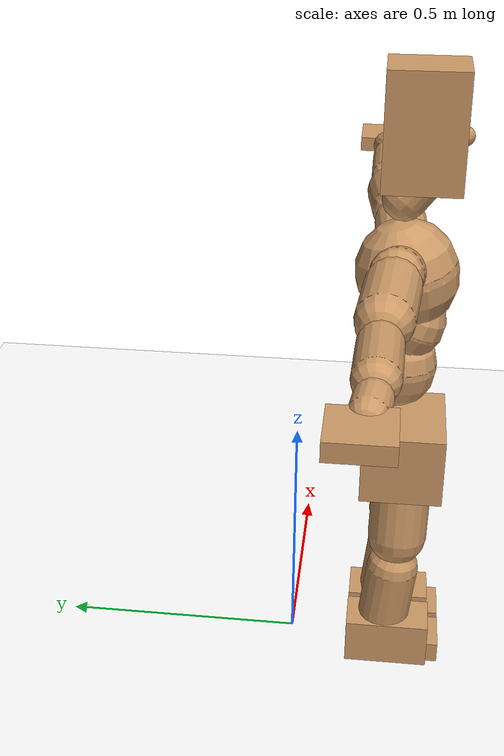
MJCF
<mujoco model="humanoid">
  <option integrator="implicitfast" />

  <visual>
    <global offwidth="1280" offheight="960" />
    <headlight active="1" ambient="0.34 0.34 0.34" diffuse="0.5 0.5 0.5" />
  </visual>

  <default>
    <joint damping="2" stiffness="2" armature="0.01" limited="true" solimplimit="0 .99 .01" />
    <geom condim="1" friction="0.7 0.005 0.0001" solimp=".99 .99 .003" solref="0.015 1" margin="0.001" rgba="0.8 0.6 .4 1" />
    <default class="smplcontact">
      <geom condim="3" friction="1. 0.005 0.0001" solref="0.015 1" solimp="0.98 0.98 0.001" priority="1" />
    </default>
    <default class="stiff_medium">
      <joint stiffness="10" />
    </default>
    <default class="stiff_medium_higher">
      <joint stiffness="50" />
    </default>
    <default class="stiff_high">
      <joint stiffness="100" />
    </default>
  </default>

  <asset>
    <texture type="skybox" builtin="gradient" rgb1="0.99 0.99 0.99" rgb2="0.608 0.828 0.892" width="100" />
    <texture builtin="flat" height="1278" mark="cross" markrgb="1 1 1" name="texgeom" random="0.01" rgb1="0.8 0.6 0.4" rgb2="0.8 0.6 0.4" type="cube" width="127" />
    <texture name="texplane" type="2d" builtin="checker" markrgb="1 1 1" rgb1="0.756 0.772 0.76" rgb2="0.6 0.6 0.6" width="100" height="100" />
    <material name="MatPlane" reflectance="0.5" texture="texplane" texrepeat="1 1" texuniform="true" />
    <material name="geom" texture="texgeom" texuniform="true" />
  </asset>

  <worldbody>
    <light name="tracking_light" pos="0 0 7" dir="0 0 -1" directional="true" cutoff="100" exponent="1" diffuse="1 1 1" specular="0.1 0.1 0.1" mode="trackcom" />
    <camera name="back" pos="0 3 2.4" xyaxes="-1 0 0 0 -1 2" mode="trackcom" />
    <camera name="side" pos="-3 0 2.4" xyaxes="0 -1 0 1 0 2" mode="trackcom" />
    <camera name="front_side" pos="-2.8 -2.8 0.8" xyaxes="0.5 -0.5 0 0.1 0.1 1" mode="trackcom" />
    <geom condim="3" name="floor" pos="0 0 0" rgba="1 1 1 1" size="100 100 .2" type="plane" material="MatPlane" />
    <body name="Pelvis" pos="-0.0018 -0.2233 0.49225" euler="90 0 0">
      <site name="Pelvis" size="0.01" />
      <freejoint name="Pelvis" />
      <geom type="box" pos="-0.0000 -0.0121 -0.0055" size="0.1069 0.0722 0.083" quat="1.0000 0.0000 0.0000 0.0000" density="3165.830099" name="Pelvis" />
      <body name="L_Hip" pos="0.03475 -0.0457 -0.0034">
        <joint name="L_Hip_x" type="hinge" pos="0 0 0" axis="1 0 0" stiffness="3.3281267346938783" range="-160.0 22.92" class="stiff_medium" damping="3.7390012674465325" armature="0.0018669335091027717"/>
        <joint name="L_Hip_y" type="hinge" pos="0 0 0" axis="0 1 0" stiffness="3.37791" range="-70.0 70.0" class="stiff_medium" damping="4.005630916019097" armature="0.004750001934737157"/>
        <joint name="L_Hip_z" type="hinge" pos="0 0 0" axis="0 0 1" stiffness="3.3736477551020405" range="-28.65 90.0" class="stiff_medium" damping="2.5063841398267135" armature="0.0018620679787552058"/>
        <geom type="capsule" density="2040.816327" fromto="0.00345 -0.0375 -0.00045 0.0137 -0.1501 -0.0018" size="0.0615" name="L_Hip" />
        <body name="L_Knee" pos="0.01715 -0.1876 -0.00225">
          <joint name="L_Knee_x" type="hinge" pos="0 0 0" axis="1 0 0" range="-5.16 171.89" damping="2.234113816312467" armature="0.002158215061835119" stiffness="0.7227130408163265"/>
          <joint name="L_Knee_y" type="hinge" pos="0 0 0" axis="0 1 0" range="-4.58 6.88" damping="3.4591258985845017" armature="0.00542202401615855" stiffness="0.6896382205818496"/>
          <joint name="L_Knee_z" type="hinge" pos="0 0 0" axis="0 0 1" range="-6.88 4.58" damping="2.248338952702009" armature="0.0021311895651193284" stiffness="0.7412274770408163"/>
          <geom type="capsule" density="1234.567901" fromto="-0.00135 -0.0398 -0.00435 -0.00545 -0.1592 -0.0175" size="0.0541" name="L_Knee" />
          <body name="L_Ankle" pos="-0.0068 -0.199 -0.02185">
            <joint name="L_Ankle_x" type="hinge" pos="0 0 0" axis="1 0 0" range="-45.84 45.84" class="stiff_medium" damping="3.0200432285450787" armature="0.005067033945711657" stiffness="5.0"/>
            <joint name="L_Ankle_y" type="hinge" pos="0 0 0" axis="0 1 0" range="-74.48 22.92" class="stiff_medium" damping="1.5371232923821347" armature="0.005250551146630429" stiffness="5.0"/>
            <joint name="L_Ankle_z" type="hinge" pos="0 0 0" axis="0 0 1" range="-4.58 4.58" class="stiff_medium" damping="3.4078637028281036" armature="0.006451963898362929" stiffness="5.0"/>
            <geom type="box" pos="0.01165 -0.01195 0.0121" size="0.0483 0.0464 0.085" quat="1.0000 0.0000 0.0000 0.0000" density="449.071558" name="L_Ankle" class="smplcontact" />
            <body name="L_Toe" pos="0.0132 -0.0279 0.05965">
              <joint name="L_Toe_x" type="hinge" pos="0 0 0" axis="1 0 0" range="-91.67 22.92" armature="0.007148590664291726" damping="1.1957082139294457" stiffness="1.0"/>
              <joint name="L_Toe_y" type="hinge" pos="0 0 0" axis="0 1 0" range="-4.58 4.58" armature="0.007990951927082678" damping="1.2641955487251706" stiffness="1.0"/>
              <joint name="L_Toe_z" type="hinge" pos="0 0 0" axis="0 0 1" range="-4.58 4.58" armature="0.009694161060559826" damping="1.3924195531921997" stiffness="1.0"/>
              <geom type="box" pos="-0.0015 0.00275 0.0124" size="0.0478 0.02 0.0496" quat="1.0000 0.0000 0.0000 0.0000" density="423.206892" name="L_Toe" class="smplcontact" />
            </body>
          </body>
        </body>
      </body>
      <body name="R_Hip" pos="-0.03385 -0.04525 -0.00215">
        <joint name="R_Hip_x" type="hinge" pos="0 0 0" axis="1 0 0" stiffness="3.3281267346938783" range="-160.0 22.92" class="stiff_medium" damping="3.7390012674465325" armature="0.0018669335091027717"/>
        <joint name="R_Hip_y" type="hinge" pos="0 0 0" axis="0 1 0" stiffness="3.37791" range="-70.0 70.0" class="stiff_medium" damping="4.005630916019097" armature="0.004750001934737157"/>
        <joint name="R_Hip_z" type="hinge" pos="0 0 0" axis="0 0 1" stiffness="3.3736477551020405" range="-90.0 28.65" class="stiff_medium" damping="2.5063841398267135" armature="0.0018620679787552058"/>
        <geom type="capsule" density="2040.816327" fromto="-0.00385 -0.03825 -0.0009 -0.0153 -0.15305 -0.00355" size="0.0606" name="R_Hip" />
        <body name="R_Knee" pos="-0.01915 -0.1913 -0.00445">
          <joint name="R_Knee_x" type="hinge" pos="0 0 0" axis="1 0 0" range="-5.16 171.89" damping="2.234113816312467" armature="0.002158215061835119" stiffness="0.7227130408163265"/>
          <joint name="R_Knee_y" type="hinge" pos="0 0 0" axis="0 1 0" range="-6.88 4.58" damping="3.4591258985845017" armature="0.00542202401615855" stiffness="0.6896382205818496"/>
          <joint name="R_Knee_z" type="hinge" pos="0 0 0" axis="0 0 1" range="-4.58 6.88" damping="2.248338952702009" armature="0.0021311895651193284" stiffness="0.7412274770408163"/>
          <geom type="capsule" density="1234.567901" fromto="0.0016 -0.03985 -0.00425 0.0063 -0.15935 -0.0169" size="0.0541" name="R_Knee" />
          <body name="R_Ankle" pos="0.0079 -0.1992 -0.02115">
            <joint name="R_Ankle_x" type="hinge" pos="0 0 0" axis="1 0 0" range="-45.84 45.84" class="stiff_medium" damping="3.0200432285450787" armature="0.005067033945711657" stiffness="5.0"/>
            <joint name="R_Ankle_y" type="hinge" pos="0 0 0" axis="0 1 0" range="-22.92 74.48" class="stiff_medium" damping="1.5371232923821347" armature="0.005250551146630429" stiffness="5.0"/>
            <joint name="R_Ankle_z" type="hinge" pos="0 0 0" axis="0 0 1" range="-4.58 4.58" class="stiff_medium" damping="3.4078637028281036" armature="0.006451963898362929" stiffness="5.0"/>
            <geom type="box" pos="-0.0106 -0.0087 0.0128" size="0.0483 0.0478 0.0865" quat="1.0000 0.0000 0.0000 0.0000" density="434.700981" name="R_Ankle" class="smplcontact" />
            <body name="R_Toe" pos="-0.0127 -0.02405 0.06165">
              <joint name="R_Toe_x" type="hinge" pos="0 0 0" axis="1 0 0" range="-91.67 22.92" armature="0.007148590664291726" damping="1.1957082139294457" stiffness="1.0"/>
              <joint name="R_Toe_y" type="hinge" pos="0 0 0" axis="0 1 0" range="-4.58 4.58" armature="0.007990951927082678" damping="1.2641955487251706" stiffness="1.0"/>
              <joint name="R_Toe_z" type="hinge" pos="0 0 0" axis="0 0 1" range="-4.58 4.58" armature="0.009694161060559826" damping="1.3924195531921997" stiffness="1.0"/>
              <geom type="box" pos="0.0021 0.00225 0.01135" size="0.0479 0.0216 0.0493" quat="1.0000 0.0000 0.0000 0.0000" density="407.384095" name="R_Toe" class="smplcontact" />
            </body>
          </body>
        </body>
      </body>
      <body name="Torso" pos="-0.0025 0.109 -0.0267">
        <joint name="Torso_x" type="hinge" pos="0 0 0" axis="1 0 0" range="-25.78 57.3" class="stiff_medium" damping="14.377725126950711" armature="0.009518929822817207" stiffness="9.651831020408164"/>
        <joint name="Torso_y" type="hinge" pos="0 0 0" axis="0 1 0" range="-57.3 57.3" class="stiff_high" damping="17.047281200761134" armature="0.007489541703378378" stiffness="97.00519999999999"/>
        <joint name="Torso_z" type="hinge" pos="0 0 0" axis="0 0 1" range="-34.38 34.38" class="stiff_high" damping="18.56536513512957" armature="0.008825226346331877" stiffness="97.63851063829787"/>
        <geom type="capsule" density="2040.816327" fromto="0.0025 0.0608 0.0005 0.003 0.0743 0.0006" size="0.0769" name="Torso" />
        <body name="Spine" pos="0.0055 0.1352 0.0011">
          <joint name="Spine_x" type="hinge" pos="0 0 0" axis="1 0 0" stiffness="9.58583163265306" range="-25.78 57.3" class="stiff_medium" damping="14.269183612083737" armature="0.009440303089812762"/>
          <joint name="Spine_y" type="hinge" pos="0 0 0" axis="0 1 0" stiffness="9.576922244897958" range="-57.3 57.3" class="stiff_high" damping="6.76738571868883" armature="0.007471983870182017"/>
          <joint name="Spine_z" type="hinge" pos="0 0 0" axis="0 0 1" stiffness="19.01161469387755" range="-34.38 34.38" class="stiff_high" damping="10.689541255547075" armature="0.008347696197381863"/>
          <geom type="capsule" density="2040.816327" fromto="0.0007 0.0238 0.0114 0.0008 0.0291 0.014" size="0.0755" name="Spine" />
          <body name="Chest" pos="0.0015 0.0529 0.0254">
            <joint name="Chest_x" type="hinge" pos="0 0 0" axis="1 0 0" stiffness="9.387211020408163" range="-25.78 57.3" class="stiff_medium" damping="14.087997898862078" armature="0.009396788619791431"/>
            <joint name="Chest_y" type="hinge" pos="0 0 0" axis="0 1 0" stiffness="8.88616191489362" range="-57.3 57.3" class="stiff_high" damping="6.5161693940165115" armature="0.007466043829259928"/>
            <joint name="Chest_z" type="hinge" pos="0 0 0" axis="0 0 1" stiffness="18.95676244897959" range="-34.38 34.38" class="stiff_high" damping="10.53982249103985" armature="0.008138979020284567"/>
            <geom type="capsule" density="2040.816327" fromto="-0.0009 0.0682 -0.0173 -0.001 0.0833 -0.0212" size="0.1002" name="Chest" />
            <body name="Neck" pos="-0.0028 0.2139 -0.0429">
              <joint name="Neck_x" type="hinge" pos="0 0 0" axis="1 0 0" range="-28.65 57.3" class="stiff_medium_higher" damping="10.000000000000002" armature="0.010000000000000005" stiffness="50.0"/>
              <joint name="Neck_y" type="hinge" pos="0 0 0" axis="0 1 0" range="-40.11 40.11" class="stiff_medium_higher" damping="10.0" armature="0.01" stiffness="50.0"/>
              <joint name="Neck_z" type="hinge" pos="0 0 0" axis="0 0 1" range="-40.11 40.11" class="stiff_medium_higher" damping="10.000000000000002" armature="0.010000000000000005" stiffness="50.0"/>
              <geom type="capsule" density="1000" fromto="0.001 0.013 0.0103 0.0041 0.052 0.0411" size="0.0436" name="Neck" />
              <body name="Head" pos="0.0052 0.065 0.0513">
                <joint name="Head_x" type="hinge" pos="0 0 0" axis="1 0 0" range="-28.65 57.3" class="stiff_medium_higher" damping="2.0" armature="0.01" stiffness="50.0"/>
                <joint name="Head_y" type="hinge" pos="0 0 0" axis="0 1 0" range="-40.11 40.11" class="stiff_medium_higher" damping="2.0" armature="0.01" stiffness="50.0"/>
                <joint name="Head_z" type="hinge" pos="0 0 0" axis="0 0 1" range="-40.11 40.11" class="stiff_medium_higher" damping="1.999999999999999" armature="0.00999999999999999" stiffness="50.0"/>
                <geom type="box" pos="-0.0042 0.0876 -0.0116" size="0.0606 0.1154 0.076" quat="1.0000 0.0000 0.0000 0.0000" density="1018.069894" name="Head" />
                <geom type="capsule" name="nose" size="0.02 0.01" pos="0 0.07 0.05" quat="1 0 0 0" mass="0" contype="0" conaffinity="0" />
              </body>
            </body>
            <body name="L_Thorax" pos="0.069935 0.108009 -0.0302637">
              <joint name="L_Thorax_x" type="hinge" pos="0 0 0" axis="1 0 0" range="-10.89 4.58" class="stiff_medium_higher" damping="16.503674429364253" armature="0.008237289712880657" stiffness="41.33205204081632"/>
              <joint name="L_Thorax_y" type="hinge" pos="0 0 0" axis="0 1 0" range="-28.65 17.19" class="stiff_medium_higher" damping="15.615380485833972" armature="0.007397181758642917" stiffness="41.2049"/>
              <joint name="L_Thorax_z" type="hinge" pos="0 0 0" axis="0 0 1" range="-31.51 40.11" class="stiff_medium_higher" damping="15.614845288813928" armature="0.007396422580499298" stiffness="41.206304591836734"/>
              <geom type="capsule" density="1000" fromto="0.0161525 0.00541375 -0.0015975 0.06461 0.021655 -0.00630125" size="0.0521" name="L_Thorax" />
              <body name="L_Shoulder" pos="0.0807625 0.0270687 -0.00789875">
                <joint name="L_Shoulder_x" type="hinge" pos="0 0 0" axis="1 0 0" range="-97.4 97.4" class="stiff_medium" damping="5.053222703168419" armature="0.008561219507331049" stiffness="8.28511887755102"/>
                <joint name="L_Shoulder_y" type="hinge" pos="0 0 0" axis="0 1 0" range="-108.86 80.21" class="stiff_medium" damping="4.696052433643626" armature="0.007424828192243072" stiffness="8.25043724489796"/>
                <joint name="L_Shoulder_z" type="hinge" pos="0 0 0" axis="0 0 1" range="-97.4 85.94" class="stiff_medium" damping="4.696316861704074" armature="0.007423822707357087" stiffness="8.252483979591837"/>
                <geom type="capsule" density="1000" fromto="0.0460612 -0.0023075 -0.00488125 0.184334 -0.0090525 -0.019525" size="0.0517" name="L_Shoulder" />
                <body name="L_Elbow" pos="0.230395 -0.01136 -0.0244062">
                  <joint name="L_Elbow_x" type="hinge" pos="0 0 0" axis="1 0 0" range="-17.19 4.58" damping="4.357905906305428" armature="0.009089595760699972" stiffness="1.6714797346938777"/>
                  <joint name="L_Elbow_y" type="hinge" pos="0 0 0" axis="0 1 0" range="-180.0 17.19" damping="3.9739600722787474" armature="0.007559999182253763" stiffness="1.6711492448979592"/>
                  <joint name="L_Elbow_z" type="hinge" pos="0 0 0" axis="0 0 1" range="-100.84 4.58" damping="3.9732408069423313" armature="0.007554721526974209" stiffness="1.671711387755102"/>
                  <geom type="capsule" density="1000" fromto="0.0441975 0.0015975 -0.0001775 0.176967 0.00639 -0.00079875" size="0.0405" name="L_Elbow" />
                  <body name="L_Wrist" pos="0.221165 0.0079875 -0.001065">
                    <joint name="L_Wrist_x" type="hinge" pos="0 0 0" axis="1 0 0" range="-180.0 22.92" armature="0.009268388983616078" damping="1.7953441559357712" stiffness="1.738846224489796"/>
                    <joint name="L_Wrist_y" type="hinge" pos="0 0 0" axis="0 1 0" range="-17.19 17.19" armature="0.008039907338787655" damping="1.6695812073111262" stiffness="1.7335407551020405"/>
                    <joint name="L_Wrist_z" type="hinge" pos="0 0 0" axis="0 0 1" range="-22.92 22.92" armature="0.007970783232335271" damping="1.663414263462615" stiffness="1.7356807551020408"/>
                    <geom type="capsule" density="1000" fromto="0.01491 -0.00142 -0.0026625 0.05964 -0.00576875 -0.01065" size="0.0318" name="L_Wrist" class="smplcontact" />
                    <body name="L_Hand" pos="0.07455 -0.0072775 -0.0132237">
                      <joint name="L_Hand_x" type="hinge" pos="0 0 0" axis="1 0 0" range="-17.19 17.19" armature="0.009907489981019441" damping="1.8754085109863687" stiffness="1.7749990612244897"/>
                      <joint name="L_Hand_y" type="hinge" pos="0 0 0" axis="0 1 0" range="-51.57 51.57" armature="0.008881214164334942" damping="1.7756208279347758" stiffness="1.7749990408163265"/>
                      <joint name="L_Hand_z" type="hinge" pos="0 0 0" axis="0 0 1" range="-91.67 91.67" armature="0.008607646402111065" damping="1.7480597104275781" stiffness="1.7749990000000002"/>
                      <geom type="box" pos="0.0437537 0.0008875 -0.0051475" size="0.0585 0.0158 0.0538" quat="1.0000 0.0000 0.0000 0.0000" density="400.552564" name="L_Hand" class="smplcontact" />
                    </body>
                  </body>
                </body>
              </body>
            </body>
            <body name="R_Thorax" pos="-0.0725975 0.105435 -0.0342575">
              <joint name="R_Thorax_x" type="hinge" pos="0 0 0" axis="1 0 0" range="-10.89 4.58" class="stiff_medium_higher" damping="16.503674429364253" armature="0.008237289712880657" stiffness="41.33205204081632"/>
              <joint name="R_Thorax_y" type="hinge" pos="0 0 0" axis="0 1 0" range="-17.19 28.65" class="stiff_medium_higher" damping="15.615380485833972" armature="0.007397181758642917" stiffness="41.2049"/>
              <joint name="R_Thorax_z" type="hinge" pos="0 0 0" axis="0 0 1" range="-40.11 31.51" class="stiff_medium_higher" damping="15.614845288813928" armature="0.007396422580499298" stiffness="41.206304591836734"/>
              <geom type="capsule" density="1000" fromto="-0.01704 0.00576875 -0.0015975 -0.06816 0.023075 -0.00647875" size="0.0511" name="R_Thorax" />
              <body name="R_Shoulder" pos="-0.0852 0.0289325 -0.00807625">
                <joint name="R_Shoulder_x" type="hinge" pos="0 0 0" axis="1 0 0" range="-97.4 97.4" class="stiff_medium" damping="5.053222703168419" armature="0.008561219507331049" stiffness="8.28511887755102"/>
                <joint name="R_Shoulder_y" type="hinge" pos="0 0 0" axis="0 1 0" range="-80.21 108.86" class="stiff_medium" damping="4.696052433643626" armature="0.007424828192243072" stiffness="8.25043724489796"/>
                <joint name="R_Shoulder_z" type="hinge" pos="0 0 0" axis="0 0 1" range="-85.94 97.4" class="stiff_medium" damping="4.696316861704074" armature="0.007423822707357087" stiffness="8.252483979591837"/>
                <geom type="capsule" density="1000" fromto="-0.0449963 -0.00239625 -0.00381625 -0.180163 -0.00949625 -0.0151763" size="0.0531" name="R_Shoulder" />
                <body name="R_Elbow" pos="-0.225159 -0.0118037 -0.0189925">
                  <joint name="R_Elbow_x" type="hinge" pos="0 0 0" axis="1 0 0" range="-17.19 4.58" damping="4.357905906305428" armature="0.009089595760699972" stiffness="1.6714797346938777"/>
                  <joint name="R_Elbow_y" type="hinge" pos="0 0 0" axis="0 1 0" range="-17.19 180.0" damping="3.9739600722787474" armature="0.007559999182253763" stiffness="1.6711492448979592"/>
                  <joint name="R_Elbow_z" type="hinge" pos="0 0 0" axis="0 0 1" range="-4.58 100.84" damping="3.9732408069423313" armature="0.007554721526974209" stiffness="1.671711387755102"/>
                  <geom type="capsule" density="1000" fromto="-0.0453512 0.00142 -0.00097625 -0.181227 0.0055025 -0.003905" size="0.0408" name="R_Elbow" />
                  <body name="R_Wrist" pos="-0.226579 0.0069225 -0.00497">
                    <joint name="R_Wrist_x" type="hinge" pos="0 0 0" axis="1 0 0" range="-180.0 22.92" armature="0.009268388983616078" damping="1.7953441559357712" stiffness="1.738846224489796"/>
                    <joint name="R_Wrist_y" type="hinge" pos="0 0 0" axis="0 1 0" range="-17.19 17.19" armature="0.008039907338787655" damping="1.6695812073111262" stiffness="1.7335407551020405"/>
                    <joint name="R_Wrist_z" type="hinge" pos="0 0 0" axis="0 0 1" range="-22.92 22.92" armature="0.007970783232335271" damping="1.663414263462615" stiffness="1.7356807551020408"/>
                    <geom type="capsule" density="1000" fromto="-0.0149987 -0.001065 -0.00186375 -0.0600837 -0.00434875 -0.00736625" size="0.0326" name="R_Wrist" class="smplcontact" />
                    <body name="R_Hand" pos="-0.0750825 -0.00541375 -0.00914125">
                      <joint name="R_Hand_x" type="hinge" pos="0 0 0" axis="1 0 0" range="-17.19 17.19" armature="0.009907489981019441" damping="1.8754085109863687" stiffness="1.7749990612244897"/>
                      <joint name="R_Hand_y" type="hinge" pos="0 0 0" axis="0 1 0" range="-51.57 51.57" armature="0.008881214164334942" damping="1.7756208279347758" stiffness="1.7749990408163265"/>
                      <joint name="R_Hand_z" type="hinge" pos="0 0 0" axis="0 0 1" range="-91.67 91.67" armature="0.008607646402111065" damping="1.7480597104275781" stiffness="1.7749990000000002"/>
                      <geom type="box" pos="-0.0410025 -0.00079875 -0.00701125" size="0.0569 0.0164 0.0546" quat="1.0000 0.0000 0.0000 0.0000" density="403.679611" name="R_Hand" class="smplcontact" />
                    </body>
                  </body>
                </body>
              </body>
            </body>
          </body>
        </body>
      </body>
    </body>
  </worldbody>
  <actuator>
    <general name="L_Hip_x" joint="L_Hip_x" biastype="affine" gainprm="95.62708680036044" biasprm="-71.66280919852072 -59.9062812244898 -0.49853350232620436" ctrllimited="true" ctrlrange="-1 1" forcerange="-119.8125624489796 119.8125624489796" />
    <general name="L_Hip_y" joint="L_Hip_y" biastype="affine" gainprm="74.28412068341248" biasprm="0.0 -60.80238 -0.8011261832038193" ctrllimited="true" ctrlrange="-1 1" forcerange="-121.60476 121.60476" />
    <general name="L_Hip_z" joint="L_Hip_z" biastype="affine" gainprm="62.8763546966517" biasprm="32.51128833240271 -60.72565959183673 -0.5012768279653427" ctrllimited="true" ctrlrange="-1 1" forcerange="-121.45131918367346 121.45131918367346" />
    <general name="L_Knee_x" joint="L_Knee_x" biastype="affine" gainprm="100.49667747567948" biasprm="94.63886492809961 -65.04417367346939 -0.5585284540781168" ctrllimited="true" ctrlrange="-1 1" forcerange="-130.08834734693878 130.08834734693878" />
    <general name="L_Knee_y" joint="L_Knee_y" biastype="affine" gainprm="6.207201182643047" biasprm="1.2457733612634387 -62.06743985236647 -0.8647814746461254" ctrllimited="true" ctrlrange="-1 1" forcerange="-124.13487970473294 124.13487970473294" />
    <general name="L_Knee_z" joint="L_Knee_z" biastype="affine" gainprm="6.671538692002082" biasprm="-1.3389650079934372 -66.71047293367346 -0.5620847381755022" ctrllimited="true" ctrlrange="-1 1" forcerange="-133.42094586734692 133.42094586734692" />
    <general name="L_Ankle_x" joint="L_Ankle_x" biastype="affine" gainprm="36.002651810139035" biasprm="0.0 -45.0 -1.006681076181693" ctrllimited="true" ctrlrange="-1 1" forcerange="-90.0 90.0" />
    <general name="L_Ankle_y" joint="L_Ankle_y" biastype="affine" gainprm="38.24889055745574" biasprm="-20.24756465238622 -45.0 -1.0247488615880898" ctrllimited="true" ctrlrange="-1 1" forcerange="-90.0 90.0" />
    <general name="L_Ankle_z" joint="L_Ankle_z" biastype="affine" gainprm="3.5971235883603128" biasprm="0.0 -45.0 -1.1359545676093679" ctrllimited="true" ctrlrange="-1 1" forcerange="-90.0 90.0" />
    <general name="L_Toe_x" joint="L_Toe_x" biastype="affine" gainprm="35.99951021748544" biasprm="-21.598449493429825 -36.0 -0.4782832855717783" ctrllimited="true" ctrlrange="-1 1" forcerange="-72.0 72.0" />
    <general name="L_Toe_y" joint="L_Toe_y" biastype="affine" gainprm="2.8776988706882505" biasprm="0.0 -36.0 -0.5056782194900683" ctrllimited="true" ctrlrange="-1 1" forcerange="-72.0 72.0" />
    <general name="L_Toe_z" joint="L_Toe_z" biastype="affine" gainprm="2.8776988706882505" biasprm="0.0 -36.0 -0.5569678212768799" ctrllimited="true" ctrlrange="-1 1" forcerange="-72.0 72.0" />
    <general name="R_Hip_x" joint="R_Hip_x" biastype="affine" gainprm="95.62708680036044" biasprm="-71.66280919852072 -59.9062812244898 -0.49853350232620436" ctrllimited="true" ctrlrange="-1 1" forcerange="-119.8125624489796 119.8125624489796" />
    <general name="R_Hip_y" joint="R_Hip_y" biastype="affine" gainprm="74.28412068341248" biasprm="0.0 -60.80238 -0.8011261832038193" ctrllimited="true" ctrlrange="-1 1" forcerange="-121.60476 121.60476" />
    <general name="R_Hip_z" joint="R_Hip_z" biastype="affine" gainprm="62.8763546966517" biasprm="-32.51128833240271 -60.72565959183673 -0.5012768279653427" ctrllimited="true" ctrlrange="-1 1" forcerange="-121.45131918367346 121.45131918367346" />
    <general name="R_Knee_x" joint="R_Knee_x" biastype="affine" gainprm="100.49667747567948" biasprm="94.63886492809961 -65.04417367346939 -0.5585284540781168" ctrllimited="true" ctrlrange="-1 1" forcerange="-130.08834734693878 130.08834734693878" />
    <general name="R_Knee_y" joint="R_Knee_y" biastype="affine" gainprm="6.207201182643047" biasprm="-1.2457733612634387 -62.06743985236647 -0.8647814746461254" ctrllimited="true" ctrlrange="-1 1" forcerange="-124.13487970473294 124.13487970473294" />
    <general name="R_Knee_z" joint="R_Knee_z" biastype="affine" gainprm="6.671538692002082" biasprm="1.3389650079934372 -66.71047293367346 -0.5620847381755022" ctrllimited="true" ctrlrange="-1 1" forcerange="-133.42094586734692 133.42094586734692" />
    <general name="R_Ankle_x" joint="R_Ankle_x" biastype="affine" gainprm="36.002651810139035" biasprm="0.0 -45.0 -1.006681076181693" ctrllimited="true" ctrlrange="-1 1" forcerange="-90.0 90.0" />
    <general name="R_Ankle_y" joint="R_Ankle_y" biastype="affine" gainprm="38.24889055745574" biasprm="20.24756465238622 -45.0 -1.0247488615880898" ctrllimited="true" ctrlrange="-1 1" forcerange="-90.0 90.0" />
    <general name="R_Ankle_z" joint="R_Ankle_z" biastype="affine" gainprm="3.5971235883603128" biasprm="0.0 -45.0 -1.1359545676093679" ctrllimited="true" ctrlrange="-1 1" forcerange="-90.0 90.0" />
    <general name="R_Toe_x" joint="R_Toe_x" biastype="affine" gainprm="35.99951021748544" biasprm="-21.598449493429825 -36.0 -0.4782832855717783" ctrllimited="true" ctrlrange="-1 1" forcerange="-72.0 72.0" />
    <general name="R_Toe_y" joint="R_Toe_y" biastype="affine" gainprm="2.8776988706882505" biasprm="0.0 -36.0 -0.5056782194900683" ctrllimited="true" ctrlrange="-1 1" forcerange="-72.0 72.0" />
    <general name="R_Toe_z" joint="R_Toe_z" biastype="affine" gainprm="2.8776988706882505" biasprm="0.0 -36.0 -0.5569678212768799" ctrllimited="true" ctrlrange="-1 1" forcerange="-72.0 72.0" />
    <general name="Torso_x" joint="Torso_x" biastype="affine" gainprm="167.94412321258363" biasprm="63.71688449278569 -231.64394448979593 -3.834060033853523" ctrllimited="true" ctrlrange="-1 1" forcerange="-347.4659167346939 347.4659167346939" />
    <general name="Torso_y" joint="Torso_y" biastype="affine" gainprm="232.82962929152654" biasprm="0.0 -232.81248 -3.409456240152227" ctrllimited="true" ctrlrange="-1 1" forcerange="-349.21871999999996 349.21871999999996" />
    <general name="Torso_z" joint="Torso_z" biastype="affine" gainprm="140.60981207084777" biasprm="0.0 -234.33242553191488 -3.7130730270259145" ctrllimited="true" ctrlrange="-1 1" forcerange="-351.49863829787233 351.49863829787233" />
    <general name="Spine_x" joint="Spine_x" biastype="affine" gainprm="166.79571838808337" biasprm="63.28118733259974 -230.05995918367344 -3.8051156298889963" ctrllimited="true" ctrlrange="-1 1" forcerange="-345.0899387755102 345.0899387755102" />
    <general name="Spine_y" joint="Spine_y" biastype="affine" gainprm="229.8630646638908" biasprm="0.0 -229.846133877551 -3.383692859344415" ctrllimited="true" ctrlrange="-1 1" forcerange="-344.76920081632653 344.76920081632653" />
    <general name="Spine_z" joint="Spine_z" biastype="affine" gainprm="136.89370883443928" biasprm="0.0 -228.1393763265306 -3.563180418515692" ctrllimited="true" ctrlrange="-1 1" forcerange="-342.2090644897959 342.2090644897959" />
    <general name="Chest_x" joint="Chest_x" biastype="affine" gainprm="163.33967315636679" biasprm="61.969986734336544 -225.29306448979594 -3.7567994396965543" ctrllimited="true" ctrlrange="-1 1" forcerange="-337.9395967346939 337.9395967346939" />
    <general name="Chest_y" joint="Chest_y" biastype="affine" gainprm="213.2835955669555" biasprm="0.0 -213.26788595744688 -3.2580846970082558" ctrllimited="true" ctrlrange="-1 1" forcerange="-319.9018289361703 319.9018289361703" />
    <general name="Chest_z" joint="Chest_z" biastype="affine" gainprm="136.49874357962614" biasprm="0.0 -227.48114938775507 -3.51327416367995" ctrllimited="true" ctrlrange="-1 1" forcerange="-341.2217240816326 341.2217240816326" />
    <general name="Neck_x" joint="Neck_x" biastype="affine" gainprm="27.00198885760427" biasprm="9.000662952534757 -36.0 -0.8000000000000003" ctrllimited="true" ctrlrange="-1 1" forcerange="-72.0 72.0" />
    <general name="Neck_y" joint="Neck_y" biastype="affine" gainprm="25.20185626709732" biasprm="0.0 -36.0 -0.8" ctrllimited="true" ctrlrange="-1 1" forcerange="-72.0 72.0" />
    <general name="Neck_z" joint="Neck_z" biastype="affine" gainprm="25.20185626709732" biasprm="0.0 -36.0 -0.8000000000000003" ctrllimited="true" ctrlrange="-1 1" forcerange="-72.0 72.0" />
    <general name="Head_x" joint="Head_x" biastype="affine" gainprm="18.001325905069514" biasprm="6.000441968356505 -24.0 -0.8" ctrllimited="true" ctrlrange="-1 1" forcerange="-48.0 48.0" />
    <general name="Head_y" joint="Head_y" biastype="affine" gainprm="16.801237511398213" biasprm="0.0 -24.0 -0.8" ctrllimited="true" ctrlrange="-1 1" forcerange="-48.0 48.0" />
    <general name="Head_z" joint="Head_z" biastype="affine" gainprm="16.801237511398213" biasprm="0.0 -24.0 -0.7999999999999996" ctrllimited="true" ctrlrange="-1 1" forcerange="-48.0 48.0" />
    <general name="L_Thorax_x" joint="L_Thorax_x" biastype="affine" gainprm="13.391705647542844" biasprm="-5.462292348803839 -99.19692489795918 -1.3202939543491403" ctrllimited="true" ctrlrange="-1 1" forcerange="-198.39384979591836 198.39384979591836" />
    <general name="L_Thorax_y" joint="L_Thorax_y" biastype="affine" gainprm="39.55961780190927" biasprm="-9.889904450477317 -98.89176 -1.249230438866718" ctrllimited="true" ctrlrange="-1 1" forcerange="-197.78352 197.78352" />
    <general name="L_Thorax_z" joint="L_Thorax_z" biastype="affine" gainprm="61.80969474430838" biasprm="7.4219962971383975 -98.89513102040816 -1.2491876231051142" ctrllimited="true" ctrlrange="-1 1" forcerange="-197.79026204081632 197.79026204081632" />
    <general name="L_Shoulder_x" joint="L_Shoulder_x" biastype="affine" gainprm="67.60460910996468" biasprm="0.0 -39.768570612244886 -1.3475260541782452" ctrllimited="true" ctrlrange="-1 1" forcerange="-79.53714122448977 79.53714122448977" />
    <general name="L_Shoulder_y" joint="L_Shoulder_y" biastype="affine" gainprm="65.34136439993874" biasprm="-9.901253980315465 -39.6020987755102 -1.2522806489716336" ctrllimited="true" ctrlrange="-1 1" forcerange="-79.2041975510204 79.2041975510204" />
    <general name="L_Shoulder_z" joint="L_Shoulder_z" biastype="affine" gainprm="63.376831969533896" biasprm="-3.9614840971466134 -39.61192310204081 -1.2523511631210864" ctrllimited="true" ctrlrange="-1 1" forcerange="-79.22384620408162 79.22384620408162" />
    <general name="L_Elbow_x" joint="L_Elbow_x" biastype="affine" gainprm="11.43166310683652" biasprm="-6.621647761929654 -60.17327044897959 -0.6972649450088685" ctrllimited="true" ctrlrange="-1 1" forcerange="-120.34654089795919 120.34654089795919" />
    <general name="L_Elbow_y" joint="L_Elbow_y" biastype="affine" gainprm="103.52613409284974" biasprm="-85.47639277679836 -60.16137281632653 -0.6358336115645996" ctrllimited="true" ctrlrange="-1 1" forcerange="-120.32274563265307 120.32274563265307" />
    <general name="L_Elbow_z" joint="L_Elbow_z" biastype="affine" gainprm="55.364857375302314" biasprm="-50.55417540264278 -60.181609959183675 -0.6357185291107731" ctrllimited="true" ctrlrange="-1 1" forcerange="-120.36321991836735 120.36321991836735" />
    <general name="L_Wrist_x" joint="L_Wrist_x" biastype="affine" gainprm="18.475008746127838" biasprm="-14.301470401349109 -10.433077346938775 -0.7181376623743085" ctrllimited="true" ctrlrange="-1 1" forcerange="-20.86615469387755 20.86615469387755" />
    <general name="L_Wrist_y" joint="L_Wrist_y" biastype="affine" gainprm="3.120603210231214" biasprm="0.0 -10.401244530612242 -0.6678324829244505" ctrllimited="true" ctrlrange="-1 1" forcerange="-20.802489061224485 20.802489061224485" />
    <general name="L_Wrist_z" joint="L_Wrist_z" biastype="affine" gainprm="4.165940658633199" biasprm="0.0 -10.414084530612245 -0.665365705385046" ctrllimited="true" ctrlrange="-1 1" forcerange="-20.82816906122449 20.82816906122449" />
    <general name="L_Hand_x" joint="L_Hand_x" biastype="affine" gainprm="3.1952336582294483" biasprm="0.0 -10.649994367346938 -0.7501634043945475" ctrllimited="true" ctrlrange="-1 1" forcerange="-21.299988734693876 21.299988734693876" />
    <general name="L_Hand_y" joint="L_Hand_y" biastype="affine" gainprm="9.585700864476143" biasprm="0.0 -10.64999424489796 -0.7102483311739104" ctrllimited="true" ctrlrange="-1 1" forcerange="-21.29998848979592 21.29998848979592" />
    <general name="L_Hand_z" joint="L_Hand_z" biastype="affine" gainprm="17.03938681481915" biasprm="0.0 -10.649994000000001 -0.6992238841710313" ctrllimited="true" ctrlrange="-1 1" forcerange="-21.299988000000003 21.299988000000003" />
    <general name="R_Thorax_x" joint="R_Thorax_x" biastype="affine" gainprm="13.391705647542844" biasprm="-5.462292348803839 -99.19692489795918 -1.3202939543491403" ctrllimited="true" ctrlrange="-1 1" forcerange="-198.39384979591836 198.39384979591836" />
    <general name="R_Thorax_y" joint="R_Thorax_y" biastype="affine" gainprm="39.55961780190927" biasprm="9.889904450477312 -98.89176 -1.249230438866718" ctrllimited="true" ctrlrange="-1 1" forcerange="-197.78352 197.78352" />
    <general name="R_Thorax_z" joint="R_Thorax_z" biastype="affine" gainprm="61.80969474430838" biasprm="-7.4219962971383975 -98.89513102040816 -1.2491876231051142" ctrllimited="true" ctrlrange="-1 1" forcerange="-197.79026204081632 197.79026204081632" />
    <general name="R_Shoulder_x" joint="R_Shoulder_x" biastype="affine" gainprm="67.60460910996468" biasprm="0.0 -39.768570612244886 -1.3475260541782452" ctrllimited="true" ctrlrange="-1 1" forcerange="-79.53714122448977 79.53714122448977" />
    <general name="R_Shoulder_y" joint="R_Shoulder_y" biastype="affine" gainprm="65.34136439993874" biasprm="9.901253980315465 -39.6020987755102 -1.2522806489716336" ctrllimited="true" ctrlrange="-1 1" forcerange="-79.2041975510204 79.2041975510204" />
    <general name="R_Shoulder_z" joint="R_Shoulder_z" biastype="affine" gainprm="63.376831969533896" biasprm="3.9614840971466045 -39.61192310204081 -1.2523511631210864" ctrllimited="true" ctrlrange="-1 1" forcerange="-79.22384620408162 79.22384620408162" />
    <general name="R_Elbow_x" joint="R_Elbow_x" biastype="affine" gainprm="11.43166310683652" biasprm="-6.621647761929654 -60.17327044897959 -0.6972649450088685" ctrllimited="true" ctrlrange="-1 1" forcerange="-120.34654089795919 120.34654089795919" />
    <general name="R_Elbow_y" joint="R_Elbow_y" biastype="affine" gainprm="103.52613409284974" biasprm="85.47639277679836 -60.16137281632653 -0.6358336115645996" ctrllimited="true" ctrlrange="-1 1" forcerange="-120.32274563265307 120.32274563265307" />
    <general name="R_Elbow_z" joint="R_Elbow_z" biastype="affine" gainprm="55.364857375302314" biasprm="50.55417540264277 -60.181609959183675 -0.6357185291107731" ctrllimited="true" ctrlrange="-1 1" forcerange="-120.36321991836735 120.36321991836735" />
    <general name="R_Wrist_x" joint="R_Wrist_x" biastype="affine" gainprm="18.475008746127838" biasprm="-14.301470401349109 -10.433077346938775 -0.7181376623743085" ctrllimited="true" ctrlrange="-1 1" forcerange="-20.86615469387755 20.86615469387755" />
    <general name="R_Wrist_y" joint="R_Wrist_y" biastype="affine" gainprm="3.120603210231214" biasprm="0.0 -10.401244530612242 -0.6678324829244505" ctrllimited="true" ctrlrange="-1 1" forcerange="-20.802489061224485 20.802489061224485" />
    <general name="R_Wrist_z" joint="R_Wrist_z" biastype="affine" gainprm="4.165940658633199" biasprm="0.0 -10.414084530612245 -0.665365705385046" ctrllimited="true" ctrlrange="-1 1" forcerange="-20.82816906122449 20.82816906122449" />
    <general name="R_Hand_x" joint="R_Hand_x" biastype="affine" gainprm="3.1952336582294483" biasprm="0.0 -10.649994367346938 -0.7501634043945475" ctrllimited="true" ctrlrange="-1 1" forcerange="-21.299988734693876 21.299988734693876" />
    <general name="R_Hand_y" joint="R_Hand_y" biastype="affine" gainprm="9.585700864476143" biasprm="0.0 -10.64999424489796 -0.7102483311739104" ctrllimited="true" ctrlrange="-1 1" forcerange="-21.29998848979592 21.29998848979592" />
    <general name="R_Hand_z" joint="R_Hand_z" biastype="affine" gainprm="17.03938681481915" biasprm="0.0 -10.649994000000001 -0.6992238841710313" ctrllimited="true" ctrlrange="-1 1" forcerange="-21.299988000000003 21.299988000000003" />
  </actuator>
  <contact>
    <exclude body1="Torso" body2="Chest" />
    <exclude body1="Head" body2="Chest" />
    <exclude body1="R_Knee" body2="R_Toe" />
    <exclude body1="R_Knee" body2="L_Ankle" />
    <exclude body1="R_Knee" body2="L_Toe" />
    <exclude body1="L_Knee" body2="L_Toe" />
    <exclude body1="L_Knee" body2="R_Ankle" />
    <exclude body1="L_Knee" body2="R_Toe" />
    <exclude body1="L_Shoulder" body2="Chest" />
    <exclude body1="R_Shoulder" body2="Chest" />
  </contact>
  <sensor>
    <framelinvel name="sensor_Pelvis_framelinvel" objtype="xbody" objname="Pelvis" />
    <framelinvel name="sensor_L_Hip_framelinvel" objtype="xbody" objname="L_Hip" />
    <framelinvel name="sensor_L_Knee_framelinvel" objtype="xbody" objname="L_Knee" />
    <framelinvel name="sensor_L_Ankle_framelinvel" objtype="xbody" objname="L_Ankle" />
    <framelinvel name="sensor_L_Toe_framelinvel" objtype="xbody" objname="L_Toe" />
    <framelinvel name="sensor_R_Hip_framelinvel" objtype="xbody" objname="R_Hip" />
    <framelinvel name="sensor_R_Knee_framelinvel" objtype="xbody" objname="R_Knee" />
    <framelinvel name="sensor_R_Ankle_framelinvel" objtype="xbody" objname="R_Ankle" />
    <framelinvel name="sensor_R_Toe_framelinvel" objtype="xbody" objname="R_Toe" />
    <framelinvel name="sensor_Torso_framelinvel" objtype="xbody" objname="Torso" />
    <framelinvel name="sensor_Spine_framelinvel" objtype="xbody" objname="Spine" />
    <framelinvel name="sensor_Chest_framelinvel" objtype="xbody" objname="Chest" />
    <framelinvel name="sensor_Neck_framelinvel" objtype="xbody" objname="Neck" />
    <framelinvel name="sensor_Head_framelinvel" objtype="xbody" objname="Head" />
    <framelinvel name="sensor_L_Thorax_framelinvel" objtype="xbody" objname="L_Thorax" />
    <framelinvel name="sensor_L_Shoulder_framelinvel" objtype="xbody" objname="L_Shoulder" />
    <framelinvel name="sensor_L_Elbow_framelinvel" objtype="xbody" objname="L_Elbow" />
    <framelinvel name="sensor_L_Wrist_framelinvel" objtype="xbody" objname="L_Wrist" />
    <framelinvel name="sensor_L_Hand_framelinvel" objtype="xbody" objname="L_Hand" />
    <framelinvel name="sensor_R_Thorax_framelinvel" objtype="xbody" objname="R_Thorax" />
    <framelinvel name="sensor_R_Shoulder_framelinvel" objtype="xbody" objname="R_Shoulder" />
    <framelinvel name="sensor_R_Elbow_framelinvel" objtype="xbody" objname="R_Elbow" />
    <framelinvel name="sensor_R_Wrist_framelinvel" objtype="xbody" objname="R_Wrist" />
    <framelinvel name="sensor_R_Hand_framelinvel" objtype="xbody" objname="R_Hand" />
    <frameangvel name="sensor_Pelvis_frameangvel" objtype="xbody" objname="Pelvis" />
    <frameangvel name="sensor_L_Hip_frameangvel" objtype="xbody" objname="L_Hip" />
    <frameangvel name="sensor_L_Knee_frameangvel" objtype="xbody" objname="L_Knee" />
    <frameangvel name="sensor_L_Ankle_frameangvel" objtype="xbody" objname="L_Ankle" />
    <frameangvel name="sensor_L_Toe_frameangvel" objtype="xbody" objname="L_Toe" />
    <frameangvel name="sensor_R_Hip_frameangvel" objtype="xbody" objname="R_Hip" />
    <frameangvel name="sensor_R_Knee_frameangvel" objtype="xbody" objname="R_Knee" />
    <frameangvel name="sensor_R_Ankle_frameangvel" objtype="xbody" objname="R_Ankle" />
    <frameangvel name="sensor_R_Toe_frameangvel" objtype="xbody" objname="R_Toe" />
    <frameangvel name="sensor_Torso_frameangvel" objtype="xbody" objname="Torso" />
    <frameangvel name="sensor_Spine_frameangvel" objtype="xbody" objname="Spine" />
    <frameangvel name="sensor_Chest_frameangvel" objtype="xbody" objname="Chest" />
    <frameangvel name="sensor_Neck_frameangvel" objtype="xbody" objname="Neck" />
    <frameangvel name="sensor_Head_frameangvel" objtype="xbody" objname="Head" />
    <frameangvel name="sensor_L_Thorax_frameangvel" objtype="xbody" objname="L_Thorax" />
    <frameangvel name="sensor_L_Shoulder_frameangvel" objtype="xbody" objname="L_Shoulder" />
    <frameangvel name="sensor_L_Elbow_frameangvel" objtype="xbody" objname="L_Elbow" />
    <frameangvel name="sensor_L_Wrist_frameangvel" objtype="xbody" objname="L_Wrist" />
    <frameangvel name="sensor_L_Hand_frameangvel" objtype="xbody" objname="L_Hand" />
    <frameangvel name="sensor_R_Thorax_frameangvel" objtype="xbody" objname="R_Thorax" />
    <frameangvel name="sensor_R_Shoulder_frameangvel" objtype="xbody" objname="R_Shoulder" />
    <frameangvel name="sensor_R_Elbow_frameangvel" objtype="xbody" objname="R_Elbow" />
    <frameangvel name="sensor_R_Wrist_frameangvel" objtype="xbody" objname="R_Wrist" />
    <frameangvel name="sensor_R_Hand_frameangvel" objtype="xbody" objname="R_Hand" />
    <subtreelinvel name="Chest_subtreelinvel" body="Chest" />
    <gyro name="Pelvis_gyro" site="Pelvis" />
  </sensor>
</mujoco>
